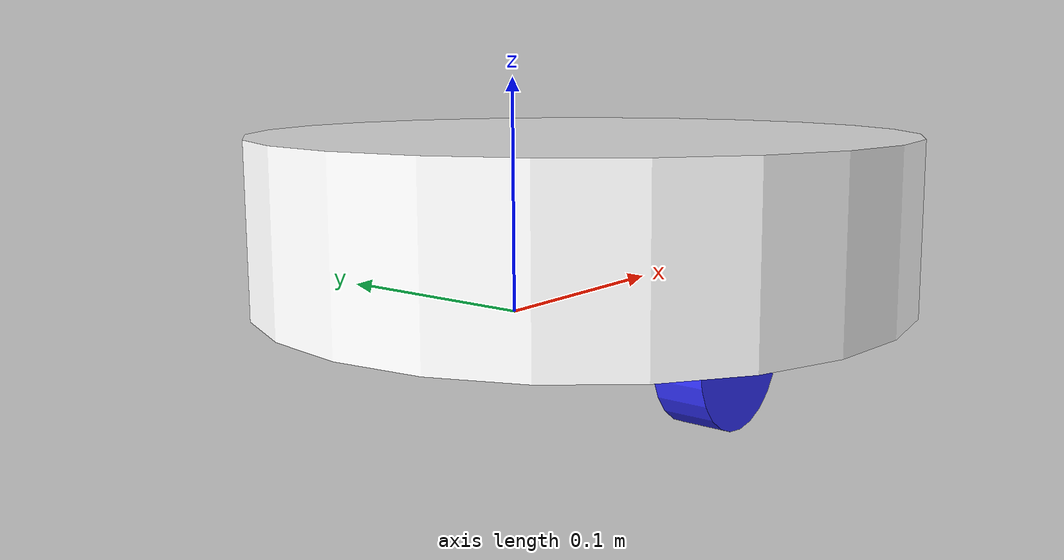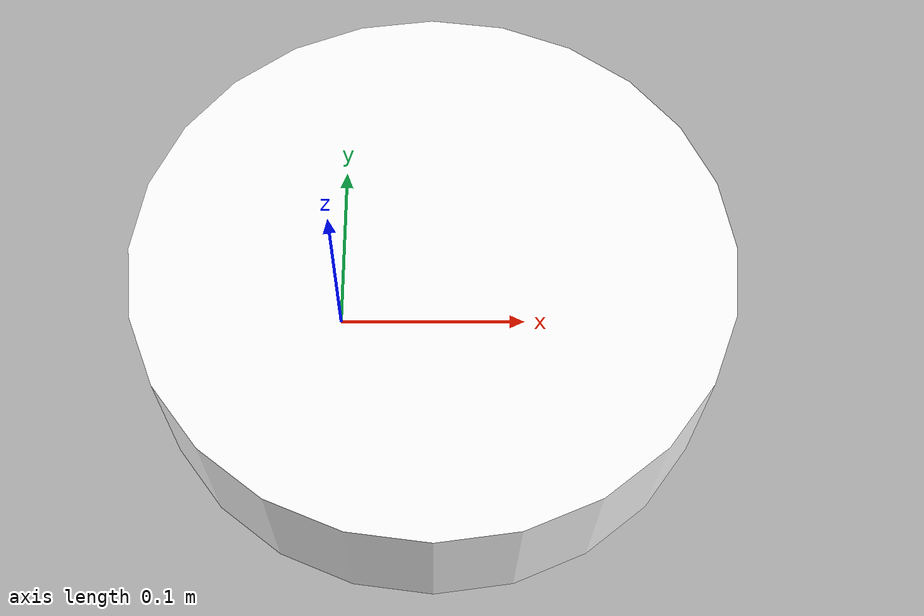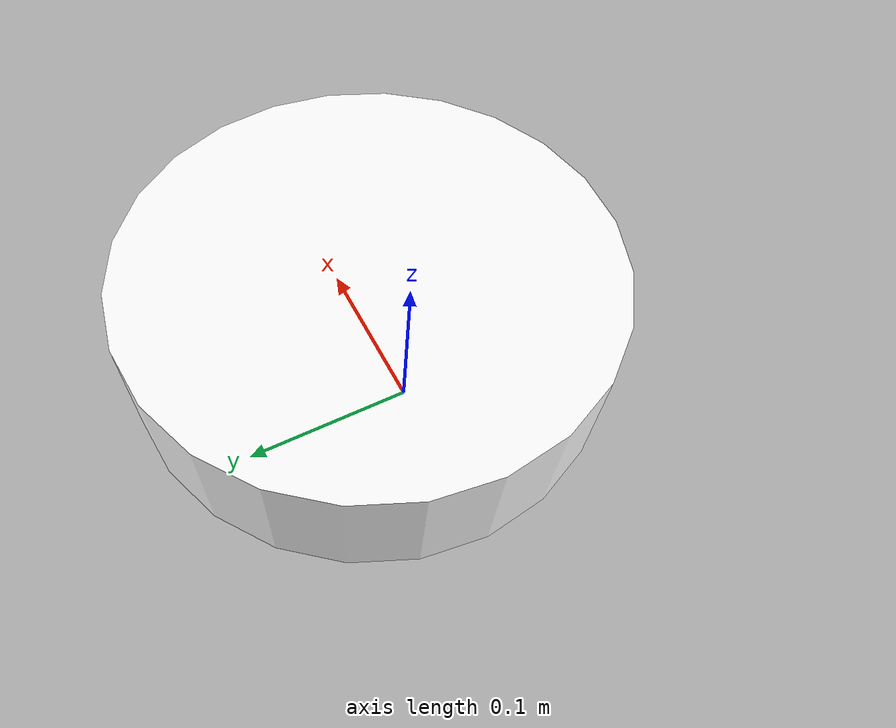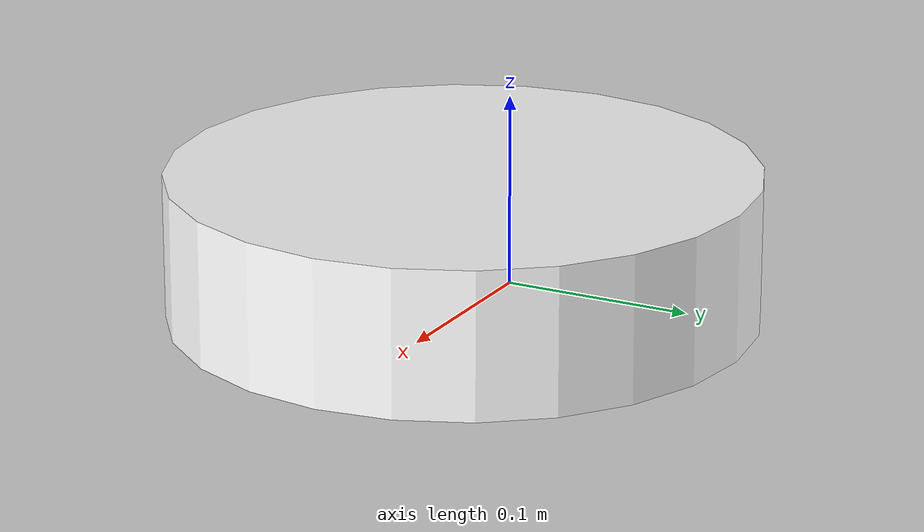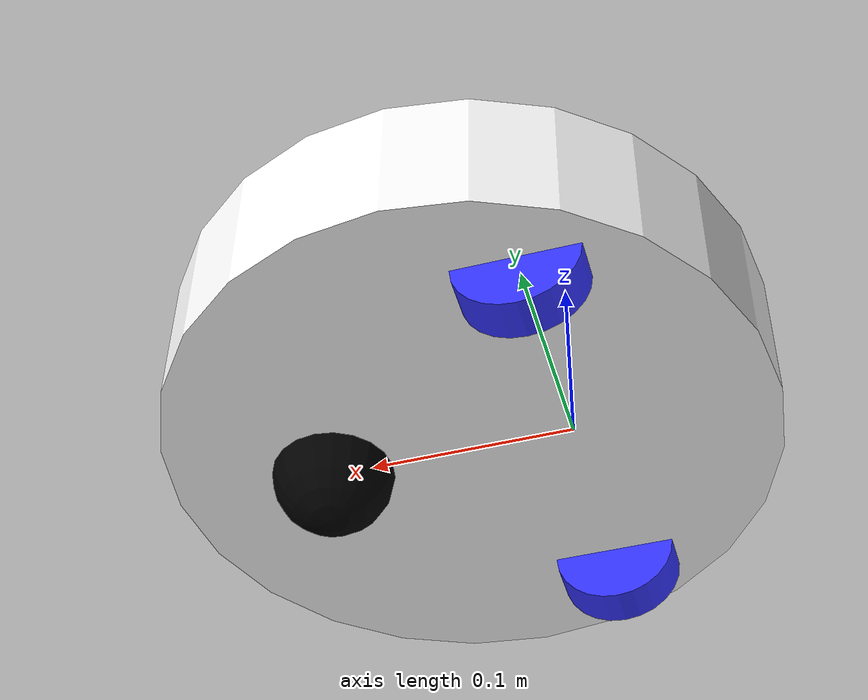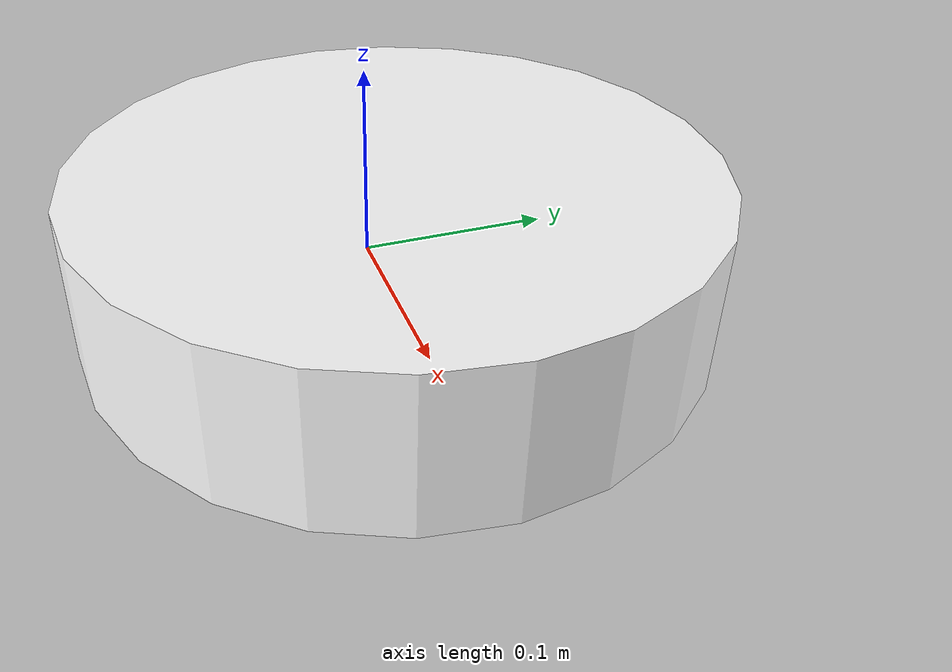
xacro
<?xml version="1.0"?>
<robot xmlns:xacro="http://www.ros.org/wiki/xacro" >

    <xacro:include filename="inertial_macros.xacro"/>

    <material name="white">
        <color rgba="1 1 1 1" />
    </material>

    <material name="orange">
        <color rgba="1 0.3 0.1 1"/>
    </material>

    <material name="blue">
        <color rgba="0.2 0.2 1 1"/>
    </material>

    <material name="black">
        <color rgba="0 0 0 1"/>
    </material>

   <!-- BASE LINK -->

   <link name="base_link">

   </link>

   <!-- Chassis -->

    <joint name="chassis_joint" type="fixed">
        <parent link="base_link"/>
        <child link="chassis"/>
        <origin xyz="-0.1 0 0"/>
    </joint>

    <link name="chassis">
        <visual>
            <origin xyz="0.15 0 0.0375"/>
            <geometry>
                <cylinder radius="0.15" length="0.075"/>
            </geometry>
            <material name="white"/>
        </visual>
        <collision>
            <origin xyz="0.15 0 0.0375"/>
            <geometry>
                <cylinder radius="0.15" length="0.075"/>
            </geometry>
        </collision>

        <xacro:inertial_cylinder mass="0.5" length ="0.075" radius="0.15">
            <origin xyz="0 0 0"/>
        </xacro:inertial_cylinder>
    </link>

    <gazebo reference="chassis">
        <material>Gazebo/White</material>
    </gazebo>

    <!-- LEFT WHEEL Link -->
                <joint name = "left_wheel_joint" type = "continuous">
                    <parent link="base_link"/>
                    <child link="left_wheel"/>
                    <origin xyz="0.0 0.10 0.0" rpy="-${pi/2} 0.0 0.0"/>
                    <axis xyz="0.0 0.0 1.0"/>
                </joint>

        <link name = "left_wheel">
            <visual>
                <geometry>
                    <cylinder radius="0.03" length="0.02"/>
                </geometry>
                <material name = "blue"/>
            </visual>
            <collision>
                <geometry>
                    <cylinder radius="0.03" length="0.02"/>
                </geometry>
            </collision>
            <xacro:inertial_cylinder mass="0.1" length="0.02" radius="0.03">
                <origin xyz="0 0 0" rpy="0 0 0"/>
            </xacro:inertial_cylinder>
        </link>

        <gazebo reference="left_wheel">
            <material>Gazebo/Blue</material>
        </gazebo>

            <!-- RIGHT WHEEL Link -->
            <joint name = "right_wheel_joint" type = "continuous">
                <parent link="base_link"/>
                <child link="right_wheel"/>
                <origin xyz="0.0 -0.10 0.0" rpy="${pi/2} 0.0 0.0"/>
                <axis xyz="0.0 0.0 -1.0"/>
            </joint>

            <link name = "right_wheel">
                <visual>
                    <geometry>
                        <cylinder radius="0.03" length="0.02"/>
                    </geometry>
                    <material name = "blue"/>
                </visual>
                <collision>
                    <geometry>
                        <cylinder radius="0.03" length="0.02"/>
                    </geometry>
                </collision>
                <xacro:inertial_cylinder mass="0.1" length="0.02" radius="0.03">
                    <origin xyz="0 0 0" rpy="0 0 0"/>
                </xacro:inertial_cylinder>
            </link>

            <gazebo reference="right_wheel">
                <material>Gazebo/Blue</material>
            </gazebo>

            <!-- Caster Wheel link -->

            <joint name = "caster_wheel_joint" type = "fixed">
                <parent link="base_link"/>
                <child link="caster_wheel"/>
                <origin xyz="0.12 0.0 0.0" />
            </joint>

            <link name = "caster_wheel">
                <visual>
                    <geometry>
                        <sphere radius="0.03"/>
                    </geometry>
                    <material name = "black"/>
                </visual>

                <collision>
                    <geometry>
                        <sphere radius="0.03"/>
                    </geometry>
                </collision>
                <xacro:inertial_sphere mass="0.1" radius="0.03">
                    <origin xyz="0 0 0" rpy="0 0 0"/>
                </xacro:inertial_sphere>

            </link>

            <gazebo reference="caster_wheel">
                <material>Gazebo/Black</material>
                <mu1 value="0.001"/>
                <mu2 value="0.001"/>
            </gazebo>

</robot>

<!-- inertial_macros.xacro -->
<robot xmlns:xacro="http://www.ros.org/wiki/xacro">

    <!-- Specify some standard inertial calculations https://en.wikipedia.org/wiki/List_of_moments_of_inertia -->
    <!-- These make use of xacro's mathematical functionality -->

    <xacro:macro name="inertial_sphere" params="mass radius *origin">
        <inertial>
            <xacro:insert_block name="origin"/>
            <mass value="${mass}" />
            <inertia ixx="${(2/5) * mass * (radius*radius)}" ixy="0.0" ixz="0.0"
                    iyy="${(2/5) * mass * (radius*radius)}" iyz="0.0"
                    izz="${(2/5) * mass * (radius*radius)}" />
        </inertial>
    </xacro:macro>

    <xacro:macro name="inertial_box" params="mass x y z *origin">
        <inertial>
            <xacro:insert_block name="origin"/>
            <mass value="${mass}" />
            <inertia ixx="${(1/12) * mass * (y*y+z*z)}" ixy="0.0" ixz="0.0"
                    iyy="${(1/12) * mass * (x*x+z*z)}" iyz="0.0"
                    izz="${(1/12) * mass * (x*x+y*y)}" />
        </inertial>
    </xacro:macro>

    <xacro:macro name="inertial_cylinder" params="mass length radius *origin">
        <inertial>
            <xacro:insert_block name="origin"/>
            <mass value="${mass}" />
            <inertia ixx="${(1/12) * mass * (3*radius*radius + length*length)}" ixy="0.0" ixz="0.0"
                    iyy="${(1/12) * mass * (3*radius*radius + length*length)}" iyz="0.0"
                    izz="${(1/2) * mass * (radius*radius)}" />
        </inertial>
    </xacro:macro>

</robot>
